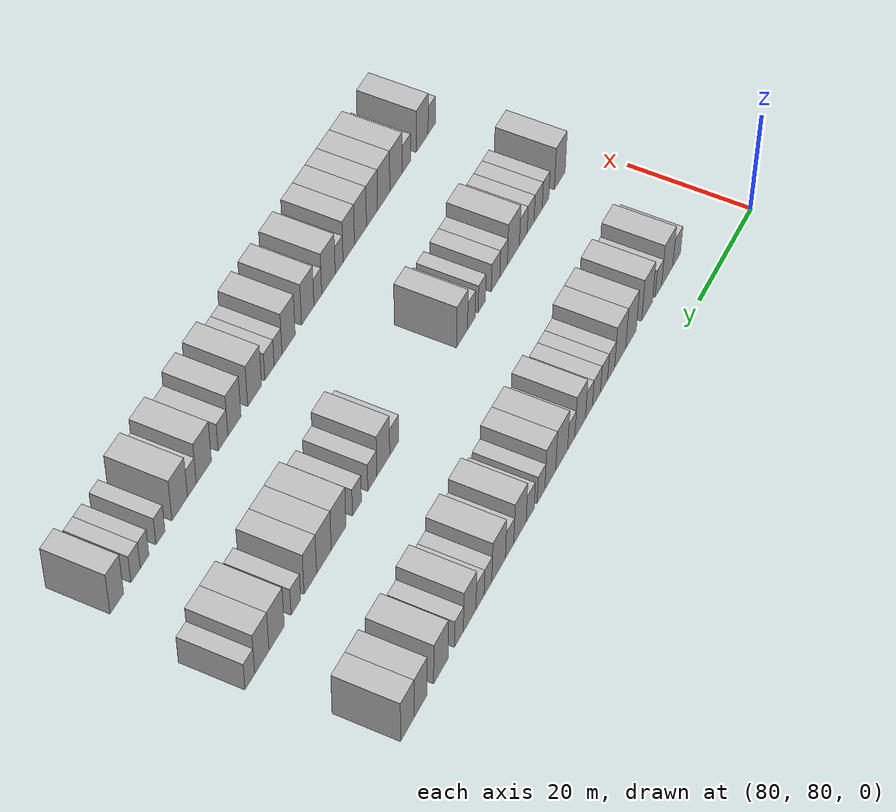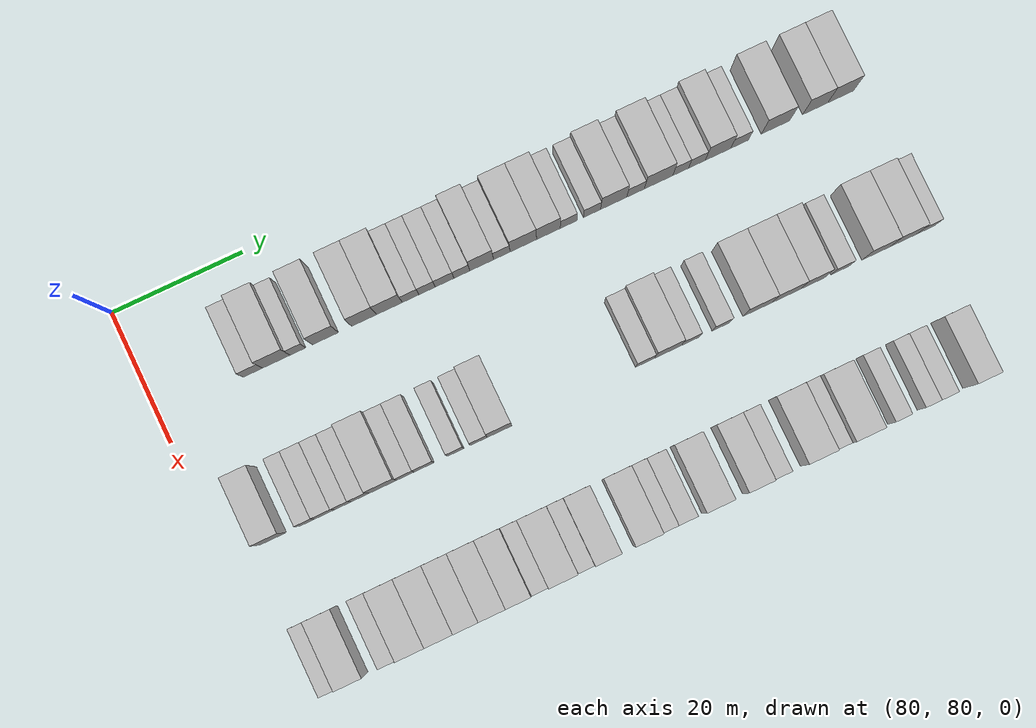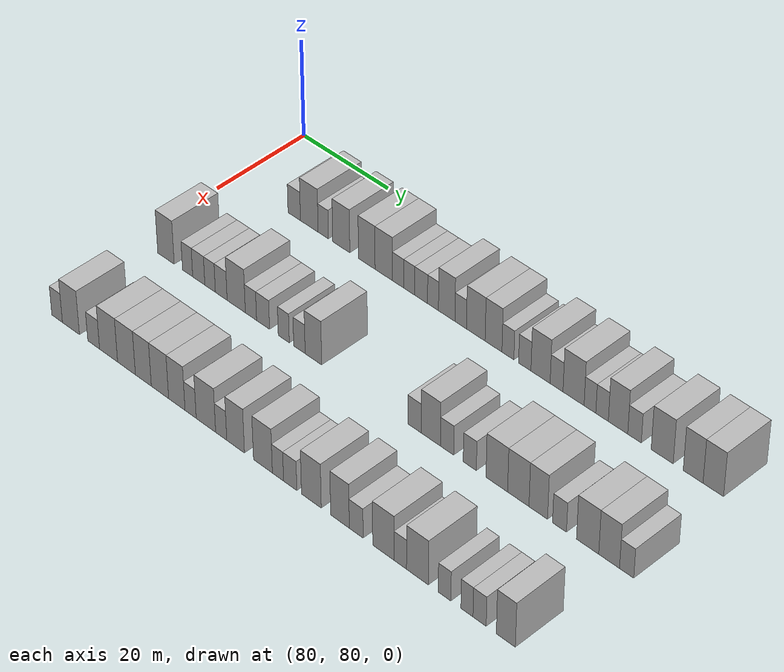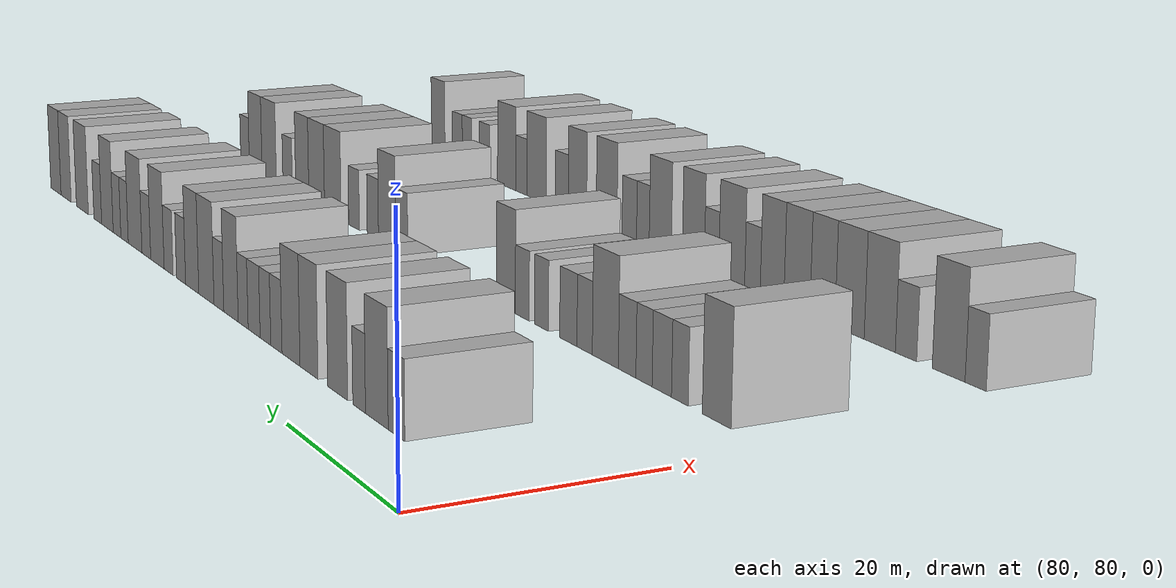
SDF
<sdf version="1.6">
 <world name="default">
  <model name="building_649">
   <static>1</static>
   <pose>91.0000 94.3193 0 0.000000 0.000000 0.000000</pose>
   <link name="link">
    <pose>0 0 3.00 0 0 0</pose>
    <collision name="collision"><geometry><box><size>10.0000 2.9408 6.0000</size></box></geometry></collision>
    <visual name="visual">
     <cast_shadows>0</cast_shadows>
     <geometry><box><size>10.0000 2.9408 6.0000</size></box></geometry>
     <material>
      <script>
       <uri>model://HANNAS_wall/materials/scripts</uri>
       <uri>model://HANNAS_wall/materials/textures</uri>
       <name>vrc/HANNAS_wall</name>
      </script>
     </material>
    </visual>
   </link>
  </model>
  <model name="building_650">
   <static>1</static>
   <pose>91.0000 97.8771 0 0.000000 0.000000 0.000000</pose>
   <link name="link">
    <pose>0 0 4.50 0 0 0</pose>
    <collision name="collision"><geometry><box><size>10.0000 4.1749 9.0000</size></box></geometry></collision>
    <visual name="visual">
     <cast_shadows>0</cast_shadows>
     <geometry><box><size>10.0000 4.1749 9.0000</size></box></geometry>
     <material>
      <script>
       <uri>model://HANNAS_wall/materials/scripts</uri>
       <uri>model://HANNAS_wall/materials/textures</uri>
       <name>vrc/HANNAS_wall</name>
      </script>
     </material>
    </visual>
   </link>
  </model>
  <model name="building_651">
   <static>1</static>
   <pose>91.0000 101.1706 0 0.000000 0.000000 0.000000</pose>
   <link name="link">
    <pose>0 0 3.00 0 0 0</pose>
    <collision name="collision"><geometry><box><size>10.0000 2.4121 6.0000</size></box></geometry></collision>
    <visual name="visual">
     <cast_shadows>0</cast_shadows>
     <geometry><box><size>10.0000 2.4121 6.0000</size></box></geometry>
     <material>
      <script>
       <uri>model://HANNAS_wall/materials/scripts</uri>
       <uri>model://HANNAS_wall/materials/textures</uri>
       <name>vrc/HANNAS_wall</name>
      </script>
     </material>
    </visual>
   </link>
  </model>
  <model name="building_652">
   <static>1</static>
   <pose>91.0000 105.3646 0 0.000000 0.000000 0.000000</pose>
   <link name="link">
    <pose>0 0 4.50 0 0 0</pose>
    <collision name="collision"><geometry><box><size>10.0000 3.9758 9.0000</size></box></geometry></collision>
    <visual name="visual">
     <cast_shadows>0</cast_shadows>
     <geometry><box><size>10.0000 3.9758 9.0000</size></box></geometry>
     <material>
      <script>
       <uri>model://HANNAS_wall/materials/scripts</uri>
       <uri>model://HANNAS_wall/materials/textures</uri>
       <name>vrc/HANNAS_wall</name>
      </script>
     </material>
    </visual>
   </link>
  </model>
  <model name="building_653">
   <static>1</static>
   <pose>91.0000 111.2610 0 0.000000 0.000000 0.000000</pose>
   <link name="link">
    <pose>0 0 4.50 0 0 0</pose>
    <collision name="collision"><geometry><box><size>10.0000 3.8170 9.0000</size></box></geometry></collision>
    <visual name="visual">
     <cast_shadows>0</cast_shadows>
     <geometry><box><size>10.0000 3.8170 9.0000</size></box></geometry>
     <material>
      <script>
       <uri>model://HANNAS_wall/materials/scripts</uri>
       <uri>model://HANNAS_wall/materials/textures</uri>
       <name>vrc/HANNAS_wall</name>
      </script>
     </material>
    </visual>
   </link>
  </model>
  <model name="building_654">
   <static>1</static>
   <pose>91.0000 115.1482 0 0.000000 0.000000 0.000000</pose>
   <link name="link">
    <pose>0 0 4.50 0 0 0</pose>
    <collision name="collision"><geometry><box><size>10.0000 3.9575 9.0000</size></box></geometry></collision>
    <visual name="visual">
     <cast_shadows>0</cast_shadows>
     <geometry><box><size>10.0000 3.9575 9.0000</size></box></geometry>
     <material>
      <script>
       <uri>model://HANNAS_wall/materials/scripts</uri>
       <uri>model://HANNAS_wall/materials/textures</uri>
       <name>vrc/HANNAS_wall</name>
      </script>
     </material>
    </visual>
   </link>
  </model>
  <model name="building_655">
   <static>1</static>
   <pose>91.0000 118.4011 0 0.000000 0.000000 0.000000</pose>
   <link name="link">
    <pose>0 0 3.00 0 0 0</pose>
    <collision name="collision"><geometry><box><size>10.0000 2.5483 6.0000</size></box></geometry></collision>
    <visual name="visual">
     <cast_shadows>0</cast_shadows>
     <geometry><box><size>10.0000 2.5483 6.0000</size></box></geometry>
     <material>
      <script>
       <uri>model://HANNAS_wall/materials/scripts</uri>
       <uri>model://HANNAS_wall/materials/textures</uri>
       <name>vrc/HANNAS_wall</name>
      </script>
     </material>
    </visual>
   </link>
  </model>
  <model name="building_656">
   <static>1</static>
   <pose>91.0000 120.9188 0 0.000000 0.000000 0.000000</pose>
   <link name="link">
    <pose>0 0 3.00 0 0 0</pose>
    <collision name="collision"><geometry><box><size>10.0000 2.4869 6.0000</size></box></geometry></collision>
    <visual name="visual">
     <cast_shadows>0</cast_shadows>
     <geometry><box><size>10.0000 2.4869 6.0000</size></box></geometry>
     <material>
      <script>
       <uri>model://HANNAS_wall/materials/scripts</uri>
       <uri>model://HANNAS_wall/materials/textures</uri>
       <name>vrc/HANNAS_wall</name>
      </script>
     </material>
    </visual>
   </link>
  </model>
  <model name="building_657">
   <static>1</static>
   <pose>91.0000 123.5968 0 0.000000 0.000000 0.000000</pose>
   <link name="link">
    <pose>0 0 3.00 0 0 0</pose>
    <collision name="collision"><geometry><box><size>10.0000 2.8692 6.0000</size></box></geometry></collision>
    <visual name="visual">
     <cast_shadows>0</cast_shadows>
     <geometry><box><size>10.0000 2.8692 6.0000</size></box></geometry>
     <material>
      <script>
       <uri>model://HANNAS_wall/materials/scripts</uri>
       <uri>model://HANNAS_wall/materials/textures</uri>
       <name>vrc/HANNAS_wall</name>
      </script>
     </material>
    </visual>
   </link>
  </model>
  <model name="building_658">
   <static>1</static>
   <pose>91.0000 126.2491 0 0.000000 0.000000 0.000000</pose>
   <link name="link">
    <pose>0 0 3.00 0 0 0</pose>
    <collision name="collision"><geometry><box><size>10.0000 2.4354 6.0000</size></box></geometry></collision>
    <visual name="visual">
     <cast_shadows>0</cast_shadows>
     <geometry><box><size>10.0000 2.4354 6.0000</size></box></geometry>
     <material>
      <script>
       <uri>model://HANNAS_wall/materials/scripts</uri>
       <uri>model://HANNAS_wall/materials/textures</uri>
       <name>vrc/HANNAS_wall</name>
      </script>
     </material>
    </visual>
   </link>
  </model>
  <model name="building_659">
   <static>1</static>
   <pose>91.0000 129.2882 0 0.000000 0.000000 0.000000</pose>
   <link name="link">
    <pose>0 0 4.50 0 0 0</pose>
    <collision name="collision"><geometry><box><size>10.0000 3.6428 9.0000</size></box></geometry></collision>
    <visual name="visual">
     <cast_shadows>0</cast_shadows>
     <geometry><box><size>10.0000 3.6428 9.0000</size></box></geometry>
     <material>
      <script>
       <uri>model://HANNAS_wall/materials/scripts</uri>
       <uri>model://HANNAS_wall/materials/textures</uri>
       <name>vrc/HANNAS_wall</name>
      </script>
     </material>
    </visual>
   </link>
  </model>
  <model name="building_660">
   <static>1</static>
   <pose>91.0000 132.3754 0 0.000000 0.000000 0.000000</pose>
   <link name="link">
    <pose>0 0 3.00 0 0 0</pose>
    <collision name="collision"><geometry><box><size>10.0000 2.5317 6.0000</size></box></geometry></collision>
    <visual name="visual">
     <cast_shadows>0</cast_shadows>
     <geometry><box><size>10.0000 2.5317 6.0000</size></box></geometry>
     <material>
      <script>
       <uri>model://HANNAS_wall/materials/scripts</uri>
       <uri>model://HANNAS_wall/materials/textures</uri>
       <name>vrc/HANNAS_wall</name>
      </script>
     </material>
    </visual>
   </link>
  </model>
  <model name="building_661">
   <static>1</static>
   <pose>91.0000 135.6810 0 0.000000 0.000000 0.000000</pose>
   <link name="link">
    <pose>0 0 4.50 0 0 0</pose>
    <collision name="collision"><geometry><box><size>10.0000 4.0795 9.0000</size></box></geometry></collision>
    <visual name="visual">
     <cast_shadows>0</cast_shadows>
     <geometry><box><size>10.0000 4.0795 9.0000</size></box></geometry>
     <material>
      <script>
       <uri>model://HANNAS_wall/materials/scripts</uri>
       <uri>model://HANNAS_wall/materials/textures</uri>
       <name>vrc/HANNAS_wall</name>
      </script>
     </material>
    </visual>
   </link>
  </model>
  <model name="building_662">
   <static>1</static>
   <pose>91.0000 139.5443 0 0.000000 0.000000 0.000000</pose>
   <link name="link">
    <pose>0 0 4.50 0 0 0</pose>
    <collision name="collision"><geometry><box><size>10.0000 3.6471 9.0000</size></box></geometry></collision>
    <visual name="visual">
     <cast_shadows>0</cast_shadows>
     <geometry><box><size>10.0000 3.6471 9.0000</size></box></geometry>
     <material>
      <script>
       <uri>model://HANNAS_wall/materials/scripts</uri>
       <uri>model://HANNAS_wall/materials/textures</uri>
       <name>vrc/HANNAS_wall</name>
      </script>
     </material>
    </visual>
   </link>
  </model>
  <model name="building_663">
   <static>1</static>
   <pose>91.0000 142.6574 0 0.000000 0.000000 0.000000</pose>
   <link name="link">
    <pose>0 0 3.00 0 0 0</pose>
    <collision name="collision"><geometry><box><size>10.0000 2.5792 6.0000</size></box></geometry></collision>
    <visual name="visual">
     <cast_shadows>0</cast_shadows>
     <geometry><box><size>10.0000 2.5792 6.0000</size></box></geometry>
     <material>
      <script>
       <uri>model://HANNAS_wall/materials/scripts</uri>
       <uri>model://HANNAS_wall/materials/textures</uri>
       <name>vrc/HANNAS_wall</name>
      </script>
     </material>
    </visual>
   </link>
  </model>
  <model name="building_664">
   <static>1</static>
   <pose>91.0000 146.2653 0 0.000000 0.000000 0.000000</pose>
   <link name="link">
    <pose>0 0 3.00 0 0 0</pose>
    <collision name="collision"><geometry><box><size>10.0000 2.6364 6.0000</size></box></geometry></collision>
    <visual name="visual">
     <cast_shadows>0</cast_shadows>
     <geometry><box><size>10.0000 2.6364 6.0000</size></box></geometry>
     <material>
      <script>
       <uri>model://HANNAS_wall/materials/scripts</uri>
       <uri>model://HANNAS_wall/materials/textures</uri>
       <name>vrc/HANNAS_wall</name>
      </script>
     </material>
    </visual>
   </link>
  </model>
  <model name="building_665">
   <static>1</static>
   <pose>91.0000 149.6207 0 0.000000 0.000000 0.000000</pose>
   <link name="link">
    <pose>0 0 4.50 0 0 0</pose>
    <collision name="collision"><geometry><box><size>10.0000 4.0744 9.0000</size></box></geometry></collision>
    <visual name="visual">
     <cast_shadows>0</cast_shadows>
     <geometry><box><size>10.0000 4.0744 9.0000</size></box></geometry>
     <material>
      <script>
       <uri>model://HANNAS_wall/materials/scripts</uri>
       <uri>model://HANNAS_wall/materials/textures</uri>
       <name>vrc/HANNAS_wall</name>
      </script>
     </material>
    </visual>
   </link>
  </model>
  <model name="building_666">
   <static>1</static>
   <pose>91.0000 153.0126 0 0.000000 0.000000 0.000000</pose>
   <link name="link">
    <pose>0 0 3.00 0 0 0</pose>
    <collision name="collision"><geometry><box><size>10.0000 2.7096 6.0000</size></box></geometry></collision>
    <visual name="visual">
     <cast_shadows>0</cast_shadows>
     <geometry><box><size>10.0000 2.7096 6.0000</size></box></geometry>
     <material>
      <script>
       <uri>model://HANNAS_wall/materials/scripts</uri>
       <uri>model://HANNAS_wall/materials/textures</uri>
       <name>vrc/HANNAS_wall</name>
      </script>
     </material>
    </visual>
   </link>
  </model>
  <model name="building_667">
   <static>1</static>
   <pose>91.0000 156.5737 0 0.000000 0.000000 0.000000</pose>
   <link name="link">
    <pose>0 0 4.50 0 0 0</pose>
    <collision name="collision"><geometry><box><size>10.0000 4.4124 9.0000</size></box></geometry></collision>
    <visual name="visual">
     <cast_shadows>0</cast_shadows>
     <geometry><box><size>10.0000 4.4124 9.0000</size></box></geometry>
     <material>
      <script>
       <uri>model://HANNAS_wall/materials/scripts</uri>
       <uri>model://HANNAS_wall/materials/textures</uri>
       <name>vrc/HANNAS_wall</name>
      </script>
     </material>
    </visual>
   </link>
  </model>
  <model name="building_668">
   <static>1</static>
   <pose>91.0000 159.9947 0 0.000000 0.000000 0.000000</pose>
   <link name="link">
    <pose>0 0 3.00 0 0 0</pose>
    <collision name="collision"><geometry><box><size>10.0000 2.4297 6.0000</size></box></geometry></collision>
    <visual name="visual">
     <cast_shadows>0</cast_shadows>
     <geometry><box><size>10.0000 2.4297 6.0000</size></box></geometry>
     <material>
      <script>
       <uri>model://HANNAS_wall/materials/scripts</uri>
       <uri>model://HANNAS_wall/materials/textures</uri>
       <name>vrc/HANNAS_wall</name>
      </script>
     </material>
    </visual>
   </link>
  </model>
  <model name="building_669">
   <static>1</static>
   <pose>91.0000 162.5017 0 0.000000 0.000000 0.000000</pose>
   <link name="link">
    <pose>0 0 3.00 0 0 0</pose>
    <collision name="collision"><geometry><box><size>10.0000 2.5842 6.0000</size></box></geometry></collision>
    <visual name="visual">
     <cast_shadows>0</cast_shadows>
     <geometry><box><size>10.0000 2.5842 6.0000</size></box></geometry>
     <material>
      <script>
       <uri>model://HANNAS_wall/materials/scripts</uri>
       <uri>model://HANNAS_wall/materials/textures</uri>
       <name>vrc/HANNAS_wall</name>
      </script>
     </material>
    </visual>
   </link>
  </model>
  <model name="building_670">
   <static>1</static>
   <pose>91.0000 165.7833 0 0.000000 0.000000 0.000000</pose>
   <link name="link">
    <pose>0 0 4.50 0 0 0</pose>
    <collision name="collision"><geometry><box><size>10.0000 3.9792 9.0000</size></box></geometry></collision>
    <visual name="visual">
     <cast_shadows>0</cast_shadows>
     <geometry><box><size>10.0000 3.9792 9.0000</size></box></geometry>
     <material>
      <script>
       <uri>model://HANNAS_wall/materials/scripts</uri>
       <uri>model://HANNAS_wall/materials/textures</uri>
       <name>vrc/HANNAS_wall</name>
      </script>
     </material>
    </visual>
   </link>
  </model>
  <model name="building_671">
   <static>1</static>
   <pose>91.0000 169.1501 0 0.000000 0.000000 0.000000</pose>
   <link name="link">
    <pose>0 0 3.00 0 0 0</pose>
    <collision name="collision"><geometry><box><size>10.0000 2.7543 6.0000</size></box></geometry></collision>
    <visual name="visual">
     <cast_shadows>0</cast_shadows>
     <geometry><box><size>10.0000 2.7543 6.0000</size></box></geometry>
     <material>
      <script>
       <uri>model://HANNAS_wall/materials/scripts</uri>
       <uri>model://HANNAS_wall/materials/textures</uri>
       <name>vrc/HANNAS_wall</name>
      </script>
     </material>
    </visual>
   </link>
  </model>
  <model name="building_672">
   <static>1</static>
   <pose>91.0000 174.7410 0 0.000000 0.000000 0.000000</pose>
   <link name="link">
    <pose>0 0 4.50 0 0 0</pose>
    <collision name="collision"><geometry><box><size>10.0000 4.4275 9.0000</size></box></geometry></collision>
    <visual name="visual">
     <cast_shadows>0</cast_shadows>
     <geometry><box><size>10.0000 4.4275 9.0000</size></box></geometry>
     <material>
      <script>
       <uri>model://HANNAS_wall/materials/scripts</uri>
       <uri>model://HANNAS_wall/materials/textures</uri>
       <name>vrc/HANNAS_wall</name>
      </script>
     </material>
    </visual>
   </link>
  </model>
  <model name="building_673">
   <static>1</static>
   <pose>91.0000 180.9167 0 0.000000 0.000000 0.000000</pose>
   <link name="link">
    <pose>0 0 4.50 0 0 0</pose>
    <collision name="collision"><geometry><box><size>10.0000 3.9238 9.0000</size></box></geometry></collision>
    <visual name="visual">
     <cast_shadows>0</cast_shadows>
     <geometry><box><size>10.0000 3.9238 9.0000</size></box></geometry>
     <material>
      <script>
       <uri>model://HANNAS_wall/materials/scripts</uri>
       <uri>model://HANNAS_wall/materials/textures</uri>
       <name>vrc/HANNAS_wall</name>
      </script>
     </material>
    </visual>
   </link>
  </model>
  <model name="building_674">
   <static>1</static>
   <pose>91.0000 184.8996 0 0.000000 0.000000 0.000000</pose>
   <link name="link">
    <pose>0 0 4.50 0 0 0</pose>
    <collision name="collision"><geometry><box><size>10.0000 4.0420 9.0000</size></box></geometry></collision>
    <visual name="visual">
     <cast_shadows>0</cast_shadows>
     <geometry><box><size>10.0000 4.0420 9.0000</size></box></geometry>
     <material>
      <script>
       <uri>model://HANNAS_wall/materials/scripts</uri>
       <uri>model://HANNAS_wall/materials/textures</uri>
       <name>vrc/HANNAS_wall</name>
      </script>
     </material>
    </visual>
   </link>
  </model>
  <model name="building_842">
   <static>1</static>
   <pose>113.0000 87.3544 0 0.000000 0.000000 0.000000</pose>
   <link name="link">
    <pose>0 0 4.50 0 0 0</pose>
    <collision name="collision"><geometry><box><size>10.0000 3.9558 9.0000</size></box></geometry></collision>
    <visual name="visual">
     <cast_shadows>0</cast_shadows>
     <geometry><box><size>10.0000 3.9558 9.0000</size></box></geometry>
     <material>
      <script>
       <uri>model://HANNAS_wall/materials/scripts</uri>
       <uri>model://HANNAS_wall/materials/textures</uri>
       <name>vrc/HANNAS_wall</name>
      </script>
     </material>
    </visual>
   </link>
  </model>
  <model name="building_843">
   <static>1</static>
   <pose>113.0000 92.5451 0 0.000000 0.000000 0.000000</pose>
   <link name="link">
    <pose>0 0 3.00 0 0 0</pose>
    <collision name="collision"><geometry><box><size>10.0000 2.4258 6.0000</size></box></geometry></collision>
    <visual name="visual">
     <cast_shadows>0</cast_shadows>
     <geometry><box><size>10.0000 2.4258 6.0000</size></box></geometry>
     <material>
      <script>
       <uri>model://HANNAS_wall/materials/scripts</uri>
       <uri>model://HANNAS_wall/materials/textures</uri>
       <name>vrc/HANNAS_wall</name>
      </script>
     </material>
    </visual>
   </link>
  </model>
  <model name="building_844">
   <static>1</static>
   <pose>113.0000 95.2024 0 0.000000 0.000000 0.000000</pose>
   <link name="link">
    <pose>0 0 3.00 0 0 0</pose>
    <collision name="collision"><geometry><box><size>10.0000 2.8887 6.0000</size></box></geometry></collision>
    <visual name="visual">
     <cast_shadows>0</cast_shadows>
     <geometry><box><size>10.0000 2.8887 6.0000</size></box></geometry>
     <material>
      <script>
       <uri>model://HANNAS_wall/materials/scripts</uri>
       <uri>model://HANNAS_wall/materials/textures</uri>
       <name>vrc/HANNAS_wall</name>
      </script>
     </material>
    </visual>
   </link>
  </model>
  <model name="building_845">
   <static>1</static>
   <pose>113.0000 97.8922 0 0.000000 0.000000 0.000000</pose>
   <link name="link">
    <pose>0 0 3.00 0 0 0</pose>
    <collision name="collision"><geometry><box><size>10.0000 2.4910 6.0000</size></box></geometry></collision>
    <visual name="visual">
     <cast_shadows>0</cast_shadows>
     <geometry><box><size>10.0000 2.4910 6.0000</size></box></geometry>
     <material>
      <script>
       <uri>model://HANNAS_wall/materials/scripts</uri>
       <uri>model://HANNAS_wall/materials/textures</uri>
       <name>vrc/HANNAS_wall</name>
      </script>
     </material>
    </visual>
   </link>
  </model>
  <model name="building_846">
   <static>1</static>
   <pose>113.0000 100.5205 0 0.000000 0.000000 0.000000</pose>
   <link name="link">
    <pose>0 0 3.00 0 0 0</pose>
    <collision name="collision"><geometry><box><size>10.0000 2.7656 6.0000</size></box></geometry></collision>
    <visual name="visual">
     <cast_shadows>0</cast_shadows>
     <geometry><box><size>10.0000 2.7656 6.0000</size></box></geometry>
     <material>
      <script>
       <uri>model://HANNAS_wall/materials/scripts</uri>
       <uri>model://HANNAS_wall/materials/textures</uri>
       <name>vrc/HANNAS_wall</name>
      </script>
     </material>
    </visual>
   </link>
  </model>
  <model name="building_847">
   <static>1</static>
   <pose>113.0000 104.0290 0 0.000000 0.000000 0.000000</pose>
   <link name="link">
    <pose>0 0 4.50 0 0 0</pose>
    <collision name="collision"><geometry><box><size>10.0000 4.2513 9.0000</size></box></geometry></collision>
    <visual name="visual">
     <cast_shadows>0</cast_shadows>
     <geometry><box><size>10.0000 4.2513 9.0000</size></box></geometry>
     <material>
      <script>
       <uri>model://HANNAS_wall/materials/scripts</uri>
       <uri>model://HANNAS_wall/materials/textures</uri>
       <name>vrc/HANNAS_wall</name>
      </script>
     </material>
    </visual>
   </link>
  </model>
  <model name="building_848">
   <static>1</static>
   <pose>113.0000 107.4557 0 0.000000 0.000000 0.000000</pose>
   <link name="link">
    <pose>0 0 3.00 0 0 0</pose>
    <collision name="collision"><geometry><box><size>10.0000 2.6020 6.0000</size></box></geometry></collision>
    <visual name="visual">
     <cast_shadows>0</cast_shadows>
     <geometry><box><size>10.0000 2.6020 6.0000</size></box></geometry>
     <material>
      <script>
       <uri>model://HANNAS_wall/materials/scripts</uri>
       <uri>model://HANNAS_wall/materials/textures</uri>
       <name>vrc/HANNAS_wall</name>
      </script>
     </material>
    </visual>
   </link>
  </model>
  <model name="building_849">
   <static>1</static>
   <pose>113.0000 110.2528 0 0.000000 0.000000 0.000000</pose>
   <link name="link">
    <pose>0 0 3.00 0 0 0</pose>
    <collision name="collision"><geometry><box><size>10.0000 2.9922 6.0000</size></box></geometry></collision>
    <visual name="visual">
     <cast_shadows>0</cast_shadows>
     <geometry><box><size>10.0000 2.9922 6.0000</size></box></geometry>
     <material>
      <script>
       <uri>model://HANNAS_wall/materials/scripts</uri>
       <uri>model://HANNAS_wall/materials/textures</uri>
       <name>vrc/HANNAS_wall</name>
      </script>
     </material>
    </visual>
   </link>
  </model>
  <model name="building_850">
   <static>1</static>
   <pose>113.0000 115.0065 0 0.000000 0.000000 0.000000</pose>
   <link name="link">
    <pose>0 0 3.00 0 0 0</pose>
    <collision name="collision"><geometry><box><size>10.0000 2.5153 6.0000</size></box></geometry></collision>
    <visual name="visual">
     <cast_shadows>0</cast_shadows>
     <geometry><box><size>10.0000 2.5153 6.0000</size></box></geometry>
     <material>
      <script>
       <uri>model://HANNAS_wall/materials/scripts</uri>
       <uri>model://HANNAS_wall/materials/textures</uri>
       <name>vrc/HANNAS_wall</name>
      </script>
     </material>
    </visual>
   </link>
  </model>
  <model name="building_851">
   <static>1</static>
   <pose>113.0000 118.5607 0 0.000000 0.000000 0.000000</pose>
   <link name="link">
    <pose>0 0 3.00 0 0 0</pose>
    <collision name="collision"><geometry><box><size>10.0000 2.5932 6.0000</size></box></geometry></collision>
    <visual name="visual">
     <cast_shadows>0</cast_shadows>
     <geometry><box><size>10.0000 2.5932 6.0000</size></box></geometry>
     <material>
      <script>
       <uri>model://HANNAS_wall/materials/scripts</uri>
       <uri>model://HANNAS_wall/materials/textures</uri>
       <name>vrc/HANNAS_wall</name>
      </script>
     </material>
    </visual>
   </link>
  </model>
  <model name="building_852">
   <static>1</static>
   <pose>113.0000 121.7166 0 0.000000 0.000000 0.000000</pose>
   <link name="link">
    <pose>0 0 4.50 0 0 0</pose>
    <collision name="collision"><geometry><box><size>10.0000 3.7185 9.0000</size></box></geometry></collision>
    <visual name="visual">
     <cast_shadows>0</cast_shadows>
     <geometry><box><size>10.0000 3.7185 9.0000</size></box></geometry>
     <material>
      <script>
       <uri>model://HANNAS_wall/materials/scripts</uri>
       <uri>model://HANNAS_wall/materials/textures</uri>
       <name>vrc/HANNAS_wall</name>
      </script>
     </material>
    </visual>
   </link>
  </model>
  <model name="building_853">
   <static>1</static>
   <pose>113.0000 143.9090 0 0.000000 0.000000 0.000000</pose>
   <link name="link">
    <pose>0 0 3.00 0 0 0</pose>
    <collision name="collision"><geometry><box><size>10.0000 2.8888 6.0000</size></box></geometry></collision>
    <visual name="visual">
     <cast_shadows>0</cast_shadows>
     <geometry><box><size>10.0000 2.8888 6.0000</size></box></geometry>
     <material>
      <script>
       <uri>model://HANNAS_wall/materials/scripts</uri>
       <uri>model://HANNAS_wall/materials/textures</uri>
       <name>vrc/HANNAS_wall</name>
      </script>
     </material>
    </visual>
   </link>
  </model>
  <model name="building_854">
   <static>1</static>
   <pose>113.0000 147.4071 0 0.000000 0.000000 0.000000</pose>
   <link name="link">
    <pose>0 0 4.50 0 0 0</pose>
    <collision name="collision"><geometry><box><size>10.0000 4.1073 9.0000</size></box></geometry></collision>
    <visual name="visual">
     <cast_shadows>0</cast_shadows>
     <geometry><box><size>10.0000 4.1073 9.0000</size></box></geometry>
     <material>
      <script>
       <uri>model://HANNAS_wall/materials/scripts</uri>
       <uri>model://HANNAS_wall/materials/textures</uri>
       <name>vrc/HANNAS_wall</name>
      </script>
     </material>
    </visual>
   </link>
  </model>
  <model name="building_855">
   <static>1</static>
   <pose>113.0000 150.8553 0 0.000000 0.000000 0.000000</pose>
   <link name="link">
    <pose>0 0 3.00 0 0 0</pose>
    <collision name="collision"><geometry><box><size>10.0000 2.7893 6.0000</size></box></geometry></collision>
    <visual name="visual">
     <cast_shadows>0</cast_shadows>
     <geometry><box><size>10.0000 2.7893 6.0000</size></box></geometry>
     <material>
      <script>
       <uri>model://HANNAS_wall/materials/scripts</uri>
       <uri>model://HANNAS_wall/materials/textures</uri>
       <name>vrc/HANNAS_wall</name>
      </script>
     </material>
    </visual>
   </link>
  </model>
  <model name="building_856">
   <static>1</static>
   <pose>113.0000 155.6273 0 0.000000 0.000000 0.000000</pose>
   <link name="link">
    <pose>0 0 3.00 0 0 0</pose>
    <collision name="collision"><geometry><box><size>10.0000 2.7546 6.0000</size></box></geometry></collision>
    <visual name="visual">
     <cast_shadows>0</cast_shadows>
     <geometry><box><size>10.0000 2.7546 6.0000</size></box></geometry>
     <material>
      <script>
       <uri>model://HANNAS_wall/materials/scripts</uri>
       <uri>model://HANNAS_wall/materials/textures</uri>
       <name>vrc/HANNAS_wall</name>
      </script>
     </material>
    </visual>
   </link>
  </model>
  <model name="building_857">
   <static>1</static>
   <pose>113.0000 161.2353 0 0.000000 0.000000 0.000000</pose>
   <link name="link">
    <pose>0 0 4.50 0 0 0</pose>
    <collision name="collision"><geometry><box><size>10.0000 4.4613 9.0000</size></box></geometry></collision>
    <visual name="visual">
     <cast_shadows>0</cast_shadows>
     <geometry><box><size>10.0000 4.4613 9.0000</size></box></geometry>
     <material>
      <script>
       <uri>model://HANNAS_wall/materials/scripts</uri>
       <uri>model://HANNAS_wall/materials/textures</uri>
       <name>vrc/HANNAS_wall</name>
      </script>
     </material>
    </visual>
   </link>
  </model>
  <model name="building_858">
   <static>1</static>
   <pose>113.0000 165.6554 0 0.000000 0.000000 0.000000</pose>
   <link name="link">
    <pose>0 0 4.50 0 0 0</pose>
    <collision name="collision"><geometry><box><size>10.0000 4.3790 9.0000</size></box></geometry></collision>
    <visual name="visual">
     <cast_shadows>0</cast_shadows>
     <geometry><box><size>10.0000 4.3790 9.0000</size></box></geometry>
     <material>
      <script>
       <uri>model://HANNAS_wall/materials/scripts</uri>
       <uri>model://HANNAS_wall/materials/textures</uri>
       <name>vrc/HANNAS_wall</name>
      </script>
     </material>
    </visual>
   </link>
  </model>
  <model name="building_859">
   <static>1</static>
   <pose>113.0000 169.7280 0 0.000000 0.000000 0.000000</pose>
   <link name="link">
    <pose>0 0 4.50 0 0 0</pose>
    <collision name="collision"><geometry><box><size>10.0000 3.7660 9.0000</size></box></geometry></collision>
    <visual name="visual">
     <cast_shadows>0</cast_shadows>
     <geometry><box><size>10.0000 3.7660 9.0000</size></box></geometry>
     <material>
      <script>
       <uri>model://HANNAS_wall/materials/scripts</uri>
       <uri>model://HANNAS_wall/materials/textures</uri>
       <name>vrc/HANNAS_wall</name>
      </script>
     </material>
    </visual>
   </link>
  </model>
  <model name="building_860">
   <static>1</static>
   <pose>113.0000 174.0135 0 0.000000 0.000000 0.000000</pose>
   <link name="link">
    <pose>0 0 3.00 0 0 0</pose>
    <collision name="collision"><geometry><box><size>10.0000 2.8050 6.0000</size></box></geometry></collision>
    <visual name="visual">
     <cast_shadows>0</cast_shadows>
     <geometry><box><size>10.0000 2.8050 6.0000</size></box></geometry>
     <material>
      <script>
       <uri>model://HANNAS_wall/materials/scripts</uri>
       <uri>model://HANNAS_wall/materials/textures</uri>
       <name>vrc/HANNAS_wall</name>
      </script>
     </material>
    </visual>
   </link>
  </model>
  <model name="building_861">
   <static>1</static>
   <pose>113.0000 179.6216 0 0.000000 0.000000 0.000000</pose>
   <link name="link">
    <pose>0 0 4.50 0 0 0</pose>
    <collision name="collision"><geometry><box><size>10.0000 4.4113 9.0000</size></box></geometry></collision>
    <visual name="visual">
     <cast_shadows>0</cast_shadows>
     <geometry><box><size>10.0000 4.4113 9.0000</size></box></geometry>
     <material>
      <script>
       <uri>model://HANNAS_wall/materials/scripts</uri>
       <uri>model://HANNAS_wall/materials/textures</uri>
       <name>vrc/HANNAS_wall</name>
      </script>
     </material>
    </visual>
   </link>
  </model>
  <model name="building_862">
   <static>1</static>
   <pose>113.0000 183.8695 0 0.000000 0.000000 0.000000</pose>
   <link name="link">
    <pose>0 0 4.50 0 0 0</pose>
    <collision name="collision"><geometry><box><size>10.0000 4.0844 9.0000</size></box></geometry></collision>
    <visual name="visual">
     <cast_shadows>0</cast_shadows>
     <geometry><box><size>10.0000 4.0844 9.0000</size></box></geometry>
     <material>
      <script>
       <uri>model://HANNAS_wall/materials/scripts</uri>
       <uri>model://HANNAS_wall/materials/textures</uri>
       <name>vrc/HANNAS_wall</name>
      </script>
     </material>
    </visual>
   </link>
  </model>
  <model name="building_863">
   <static>1</static>
   <pose>113.0000 187.3024 0 0.000000 0.000000 0.000000</pose>
   <link name="link">
    <pose>0 0 3.00 0 0 0</pose>
    <collision name="collision"><geometry><box><size>10.0000 2.7813 6.0000</size></box></geometry></collision>
    <visual name="visual">
     <cast_shadows>0</cast_shadows>
     <geometry><box><size>10.0000 2.7813 6.0000</size></box></geometry>
     <material>
      <script>
       <uri>model://HANNAS_wall/materials/scripts</uri>
       <uri>model://HANNAS_wall/materials/textures</uri>
       <name>vrc/HANNAS_wall</name>
      </script>
     </material>
    </visual>
   </link>
  </model>
  <model name="building_1027">
   <static>1</static>
   <pose>135.0000 86.0999 0 0.000000 0.000000 0.000000</pose>
   <link name="link">
    <pose>0 0 3.00 0 0 0</pose>
    <collision name="collision"><geometry><box><size>10.0000 2.5597 6.0000</size></box></geometry></collision>
    <visual name="visual">
     <cast_shadows>0</cast_shadows>
     <geometry><box><size>10.0000 2.5597 6.0000</size></box></geometry>
     <material>
      <script>
       <uri>model://HANNAS_wall/materials/scripts</uri>
       <uri>model://HANNAS_wall/materials/textures</uri>
       <name>vrc/HANNAS_wall</name>
      </script>
     </material>
    </visual>
   </link>
  </model>
  <model name="building_1028">
   <static>1</static>
   <pose>135.0000 89.4349 0 0.000000 0.000000 0.000000</pose>
   <link name="link">
    <pose>0 0 4.50 0 0 0</pose>
    <collision name="collision"><geometry><box><size>10.0000 4.1103 9.0000</size></box></geometry></collision>
    <visual name="visual">
     <cast_shadows>0</cast_shadows>
     <geometry><box><size>10.0000 4.1103 9.0000</size></box></geometry>
     <material>
      <script>
       <uri>model://HANNAS_wall/materials/scripts</uri>
       <uri>model://HANNAS_wall/materials/textures</uri>
       <name>vrc/HANNAS_wall</name>
      </script>
     </material>
    </visual>
   </link>
  </model>
  <model name="building_1029">
   <static>1</static>
   <pose>135.0000 94.9000 0 0.000000 0.000000 0.000000</pose>
   <link name="link">
    <pose>0 0 3.00 0 0 0</pose>
    <collision name="collision"><geometry><box><size>10.0000 2.8198 6.0000</size></box></geometry></collision>
    <visual name="visual">
     <cast_shadows>0</cast_shadows>
     <geometry><box><size>10.0000 2.8198 6.0000</size></box></geometry>
     <material>
      <script>
       <uri>model://HANNAS_wall/materials/scripts</uri>
       <uri>model://HANNAS_wall/materials/textures</uri>
       <name>vrc/HANNAS_wall</name>
      </script>
     </material>
    </visual>
   </link>
  </model>
  <model name="building_1030">
   <static>1</static>
   <pose>135.0000 98.4419 0 0.000000 0.000000 0.000000</pose>
   <link name="link">
    <pose>0 0 4.50 0 0 0</pose>
    <collision name="collision"><geometry><box><size>10.0000 4.2641 9.0000</size></box></geometry></collision>
    <visual name="visual">
     <cast_shadows>0</cast_shadows>
     <geometry><box><size>10.0000 4.2641 9.0000</size></box></geometry>
     <material>
      <script>
       <uri>model://HANNAS_wall/materials/scripts</uri>
       <uri>model://HANNAS_wall/materials/textures</uri>
       <name>vrc/HANNAS_wall</name>
      </script>
     </material>
    </visual>
   </link>
  </model>
  <model name="building_1031">
   <static>1</static>
   <pose>135.0000 102.6627 0 0.000000 0.000000 0.000000</pose>
   <link name="link">
    <pose>0 0 4.50 0 0 0</pose>
    <collision name="collision"><geometry><box><size>10.0000 4.1776 9.0000</size></box></geometry></collision>
    <visual name="visual">
     <cast_shadows>0</cast_shadows>
     <geometry><box><size>10.0000 4.1776 9.0000</size></box></geometry>
     <material>
      <script>
       <uri>model://HANNAS_wall/materials/scripts</uri>
       <uri>model://HANNAS_wall/materials/textures</uri>
       <name>vrc/HANNAS_wall</name>
      </script>
     </material>
    </visual>
   </link>
  </model>
  <model name="building_1032">
   <static>1</static>
   <pose>135.0000 106.6046 0 0.000000 0.000000 0.000000</pose>
   <link name="link">
    <pose>0 0 4.50 0 0 0</pose>
    <collision name="collision"><geometry><box><size>10.0000 3.7061 9.0000</size></box></geometry></collision>
    <visual name="visual">
     <cast_shadows>0</cast_shadows>
     <geometry><box><size>10.0000 3.7061 9.0000</size></box></geometry>
     <material>
      <script>
       <uri>model://HANNAS_wall/materials/scripts</uri>
       <uri>model://HANNAS_wall/materials/textures</uri>
       <name>vrc/HANNAS_wall</name>
      </script>
     </material>
    </visual>
   </link>
  </model>
  <model name="building_1033">
   <static>1</static>
   <pose>135.0000 110.4518 0 0.000000 0.000000 0.000000</pose>
   <link name="link">
    <pose>0 0 4.50 0 0 0</pose>
    <collision name="collision"><geometry><box><size>10.0000 3.9883 9.0000</size></box></geometry></collision>
    <visual name="visual">
     <cast_shadows>0</cast_shadows>
     <geometry><box><size>10.0000 3.9883 9.0000</size></box></geometry>
     <material>
      <script>
       <uri>model://HANNAS_wall/materials/scripts</uri>
       <uri>model://HANNAS_wall/materials/textures</uri>
       <name>vrc/HANNAS_wall</name>
      </script>
     </material>
    </visual>
   </link>
  </model>
  <model name="building_1034">
   <static>1</static>
   <pose>135.0000 114.3229 0 0.000000 0.000000 0.000000</pose>
   <link name="link">
    <pose>0 0 4.50 0 0 0</pose>
    <collision name="collision"><geometry><box><size>10.0000 3.7541 9.0000</size></box></geometry></collision>
    <visual name="visual">
     <cast_shadows>0</cast_shadows>
     <geometry><box><size>10.0000 3.7541 9.0000</size></box></geometry>
     <material>
      <script>
       <uri>model://HANNAS_wall/materials/scripts</uri>
       <uri>model://HANNAS_wall/materials/textures</uri>
       <name>vrc/HANNAS_wall</name>
      </script>
     </material>
    </visual>
   </link>
  </model>
  <model name="building_1035">
   <static>1</static>
   <pose>135.0000 117.4698 0 0.000000 0.000000 0.000000</pose>
   <link name="link">
    <pose>0 0 3.00 0 0 0</pose>
    <collision name="collision"><geometry><box><size>10.0000 2.5396 6.0000</size></box></geometry></collision>
    <visual name="visual">
     <cast_shadows>0</cast_shadows>
     <geometry><box><size>10.0000 2.5396 6.0000</size></box></geometry>
     <material>
      <script>
       <uri>model://HANNAS_wall/materials/scripts</uri>
       <uri>model://HANNAS_wall/materials/textures</uri>
       <name>vrc/HANNAS_wall</name>
      </script>
     </material>
    </visual>
   </link>
  </model>
  <model name="building_1036">
   <static>1</static>
   <pose>135.0000 120.9311 0 0.000000 0.000000 0.000000</pose>
   <link name="link">
    <pose>0 0 4.50 0 0 0</pose>
    <collision name="collision"><geometry><box><size>10.0000 4.3830 9.0000</size></box></geometry></collision>
    <visual name="visual">
     <cast_shadows>0</cast_shadows>
     <geometry><box><size>10.0000 4.3830 9.0000</size></box></geometry>
     <material>
      <script>
       <uri>model://HANNAS_wall/materials/scripts</uri>
       <uri>model://HANNAS_wall/materials/textures</uri>
       <name>vrc/HANNAS_wall</name>
      </script>
     </material>
    </visual>
   </link>
  </model>
  <model name="building_1037">
   <static>1</static>
   <pose>135.0000 124.3692 0 0.000000 0.000000 0.000000</pose>
   <link name="link">
    <pose>0 0 3.00 0 0 0</pose>
    <collision name="collision"><geometry><box><size>10.0000 2.4933 6.0000</size></box></geometry></collision>
    <visual name="visual">
     <cast_shadows>0</cast_shadows>
     <geometry><box><size>10.0000 2.4933 6.0000</size></box></geometry>
     <material>
      <script>
       <uri>model://HANNAS_wall/materials/scripts</uri>
       <uri>model://HANNAS_wall/materials/textures</uri>
       <name>vrc/HANNAS_wall</name>
      </script>
     </material>
    </visual>
   </link>
  </model>
  <model name="building_1038">
   <static>1</static>
   <pose>135.0000 127.5848 0 0.000000 0.000000 0.000000</pose>
   <link name="link">
    <pose>0 0 4.50 0 0 0</pose>
    <collision name="collision"><geometry><box><size>10.0000 3.9379 9.0000</size></box></geometry></collision>
    <visual name="visual">
     <cast_shadows>0</cast_shadows>
     <geometry><box><size>10.0000 3.9379 9.0000</size></box></geometry>
     <material>
      <script>
       <uri>model://HANNAS_wall/materials/scripts</uri>
       <uri>model://HANNAS_wall/materials/textures</uri>
       <name>vrc/HANNAS_wall</name>
      </script>
     </material>
    </visual>
   </link>
  </model>
  <model name="building_1039">
   <static>1</static>
   <pose>135.0000 133.6252 0 0.000000 0.000000 0.000000</pose>
   <link name="link">
    <pose>0 0 4.50 0 0 0</pose>
    <collision name="collision"><geometry><box><size>10.0000 4.1428 9.0000</size></box></geometry></collision>
    <visual name="visual">
     <cast_shadows>0</cast_shadows>
     <geometry><box><size>10.0000 4.1428 9.0000</size></box></geometry>
     <material>
      <script>
       <uri>model://HANNAS_wall/materials/scripts</uri>
       <uri>model://HANNAS_wall/materials/textures</uri>
       <name>vrc/HANNAS_wall</name>
      </script>
     </material>
    </visual>
   </link>
  </model>
  <model name="building_1040">
   <static>1</static>
   <pose>135.0000 136.9111 0 0.000000 0.000000 0.000000</pose>
   <link name="link">
    <pose>0 0 3.00 0 0 0</pose>
    <collision name="collision"><geometry><box><size>10.0000 2.4290 6.0000</size></box></geometry></collision>
    <visual name="visual">
     <cast_shadows>0</cast_shadows>
     <geometry><box><size>10.0000 2.4290 6.0000</size></box></geometry>
     <material>
      <script>
       <uri>model://HANNAS_wall/materials/scripts</uri>
       <uri>model://HANNAS_wall/materials/textures</uri>
       <name>vrc/HANNAS_wall</name>
      </script>
     </material>
    </visual>
   </link>
  </model>
  <model name="building_1041">
   <static>1</static>
   <pose>135.0000 139.5671 0 0.000000 0.000000 0.000000</pose>
   <link name="link">
    <pose>0 0 3.00 0 0 0</pose>
    <collision name="collision"><geometry><box><size>10.0000 2.8829 6.0000</size></box></geometry></collision>
    <visual name="visual">
     <cast_shadows>0</cast_shadows>
     <geometry><box><size>10.0000 2.8829 6.0000</size></box></geometry>
     <material>
      <script>
       <uri>model://HANNAS_wall/materials/scripts</uri>
       <uri>model://HANNAS_wall/materials/textures</uri>
       <name>vrc/HANNAS_wall</name>
      </script>
     </material>
    </visual>
   </link>
  </model>
  <model name="building_1042">
   <static>1</static>
   <pose>135.0000 144.1315 0 0.000000 0.000000 0.000000</pose>
   <link name="link">
    <pose>0 0 4.50 0 0 0</pose>
    <collision name="collision"><geometry><box><size>10.0000 4.2459 9.0000</size></box></geometry></collision>
    <visual name="visual">
     <cast_shadows>0</cast_shadows>
     <geometry><box><size>10.0000 4.2459 9.0000</size></box></geometry>
     <material>
      <script>
       <uri>model://HANNAS_wall/materials/scripts</uri>
       <uri>model://HANNAS_wall/materials/textures</uri>
       <name>vrc/HANNAS_wall</name>
      </script>
     </material>
    </visual>
   </link>
  </model>
  <model name="building_1043">
   <static>1</static>
   <pose>135.0000 150.2222 0 0.000000 0.000000 0.000000</pose>
   <link name="link">
    <pose>0 0 4.50 0 0 0</pose>
    <collision name="collision"><geometry><box><size>10.0000 3.9354 9.0000</size></box></geometry></collision>
    <visual name="visual">
     <cast_shadows>0</cast_shadows>
     <geometry><box><size>10.0000 3.9354 9.0000</size></box></geometry>
     <material>
      <script>
       <uri>model://HANNAS_wall/materials/scripts</uri>
       <uri>model://HANNAS_wall/materials/textures</uri>
       <name>vrc/HANNAS_wall</name>
      </script>
     </material>
    </visual>
   </link>
  </model>
  <model name="building_1044">
   <static>1</static>
   <pose>135.0000 153.6452 0 0.000000 0.000000 0.000000</pose>
   <link name="link">
    <pose>0 0 3.00 0 0 0</pose>
    <collision name="collision"><geometry><box><size>10.0000 2.9106 6.0000</size></box></geometry></collision>
    <visual name="visual">
     <cast_shadows>0</cast_shadows>
     <geometry><box><size>10.0000 2.9106 6.0000</size></box></geometry>
     <material>
      <script>
       <uri>model://HANNAS_wall/materials/scripts</uri>
       <uri>model://HANNAS_wall/materials/textures</uri>
       <name>vrc/HANNAS_wall</name>
      </script>
     </material>
    </visual>
   </link>
  </model>
  <model name="building_1045">
   <static>1</static>
   <pose>135.0000 159.3156 0 0.000000 0.000000 0.000000</pose>
   <link name="link">
    <pose>0 0 4.50 0 0 0</pose>
    <collision name="collision"><geometry><box><size>10.0000 4.4301 9.0000</size></box></geometry></collision>
    <visual name="visual">
     <cast_shadows>0</cast_shadows>
     <geometry><box><size>10.0000 4.4301 9.0000</size></box></geometry>
     <material>
      <script>
       <uri>model://HANNAS_wall/materials/scripts</uri>
       <uri>model://HANNAS_wall/materials/textures</uri>
       <name>vrc/HANNAS_wall</name>
      </script>
     </material>
    </visual>
   </link>
  </model>
  <model name="building_1046">
   <static>1</static>
   <pose>135.0000 162.8088 0 0.000000 0.000000 0.000000</pose>
   <link name="link">
    <pose>0 0 3.00 0 0 0</pose>
    <collision name="collision"><geometry><box><size>10.0000 2.5563 6.0000</size></box></geometry></collision>
    <visual name="visual">
     <cast_shadows>0</cast_shadows>
     <geometry><box><size>10.0000 2.5563 6.0000</size></box></geometry>
     <material>
      <script>
       <uri>model://HANNAS_wall/materials/scripts</uri>
       <uri>model://HANNAS_wall/materials/textures</uri>
       <name>vrc/HANNAS_wall</name>
      </script>
     </material>
    </visual>
   </link>
  </model>
  <model name="building_1047">
   <static>1</static>
   <pose>135.0000 166.3252 0 0.000000 0.000000 0.000000</pose>
   <link name="link">
    <pose>0 0 4.50 0 0 0</pose>
    <collision name="collision"><geometry><box><size>10.0000 4.4766 9.0000</size></box></geometry></collision>
    <visual name="visual">
     <cast_shadows>0</cast_shadows>
     <geometry><box><size>10.0000 4.4766 9.0000</size></box></geometry>
     <material>
      <script>
       <uri>model://HANNAS_wall/materials/scripts</uri>
       <uri>model://HANNAS_wall/materials/textures</uri>
       <name>vrc/HANNAS_wall</name>
      </script>
     </material>
    </visual>
   </link>
  </model>
  <model name="building_1048">
   <static>1</static>
   <pose>135.0000 171.8343 0 0.000000 0.000000 0.000000</pose>
   <link name="link">
    <pose>0 0 3.00 0 0 0</pose>
    <collision name="collision"><geometry><box><size>10.0000 2.5417 6.0000</size></box></geometry></collision>
    <visual name="visual">
     <cast_shadows>0</cast_shadows>
     <geometry><box><size>10.0000 2.5417 6.0000</size></box></geometry>
     <material>
      <script>
       <uri>model://HANNAS_wall/materials/scripts</uri>
       <uri>model://HANNAS_wall/materials/textures</uri>
       <name>vrc/HANNAS_wall</name>
      </script>
     </material>
    </visual>
   </link>
  </model>
  <model name="building_1049">
   <static>1</static>
   <pose>135.0000 176.3127 0 0.000000 0.000000 0.000000</pose>
   <link name="link">
    <pose>0 0 3.00 0 0 0</pose>
    <collision name="collision"><geometry><box><size>10.0000 2.4152 6.0000</size></box></geometry></collision>
    <visual name="visual">
     <cast_shadows>0</cast_shadows>
     <geometry><box><size>10.0000 2.4152 6.0000</size></box></geometry>
     <material>
      <script>
       <uri>model://HANNAS_wall/materials/scripts</uri>
       <uri>model://HANNAS_wall/materials/textures</uri>
       <name>vrc/HANNAS_wall</name>
      </script>
     </material>
    </visual>
   </link>
  </model>
  <model name="building_1050">
   <static>1</static>
   <pose>135.0000 178.8295 0 0.000000 0.000000 0.000000</pose>
   <link name="link">
    <pose>0 0 3.00 0 0 0</pose>
    <collision name="collision"><geometry><box><size>10.0000 2.6182 6.0000</size></box></geometry></collision>
    <visual name="visual">
     <cast_shadows>0</cast_shadows>
     <geometry><box><size>10.0000 2.6182 6.0000</size></box></geometry>
     <material>
      <script>
       <uri>model://HANNAS_wall/materials/scripts</uri>
       <uri>model://HANNAS_wall/materials/textures</uri>
       <name>vrc/HANNAS_wall</name>
      </script>
     </material>
    </visual>
   </link>
  </model>
  <model name="building_1051">
   <static>1</static>
   <pose>135.0000 184.0023 0 0.000000 0.000000 0.000000</pose>
   <link name="link">
    <pose>0 0 4.50 0 0 0</pose>
    <collision name="collision"><geometry><box><size>10.0000 3.7276 9.0000</size></box></geometry></collision>
    <visual name="visual">
     <cast_shadows>0</cast_shadows>
     <geometry><box><size>10.0000 3.7276 9.0000</size></box></geometry>
     <material>
      <script>
       <uri>model://HANNAS_wall/materials/scripts</uri>
       <uri>model://HANNAS_wall/materials/textures</uri>
       <name>vrc/HANNAS_wall</name>
      </script>
     </material>
    </visual>
   </link>
  </model>
 </world>
</sdf>
